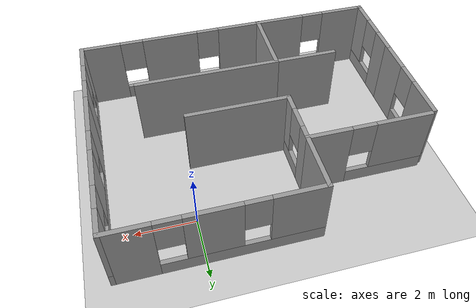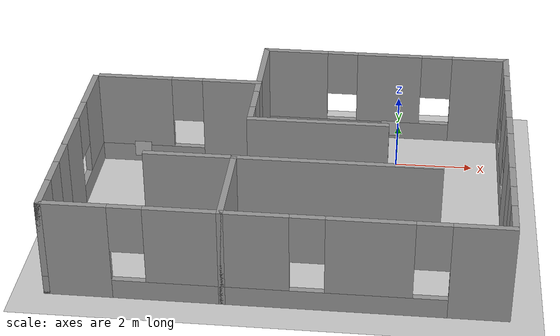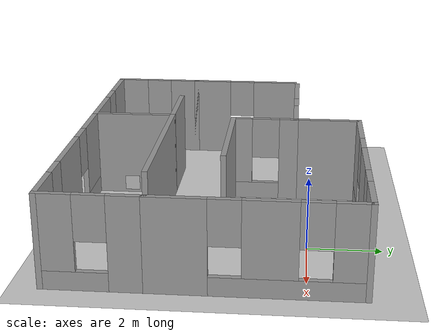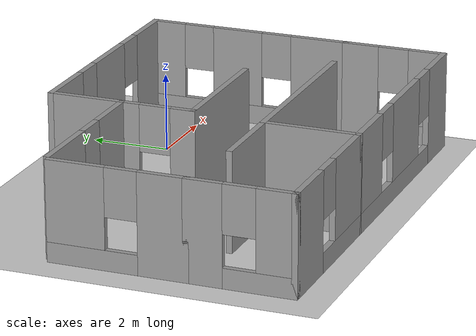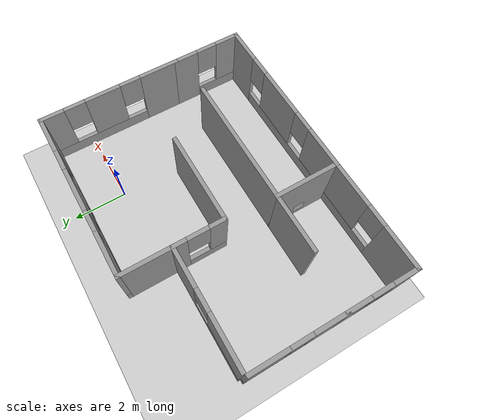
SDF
<sdf version="1.7">
 <world name="default">
  <light name="sun" type="directional">
   <pose>0 0 10 0 -0 0</pose>
   <diffuse>0.8 0.8 0.8 1</diffuse>
   <specular>0.2 0.2 0.2 1</specular>
   <attenuation>
    <range>1000</range>
    <constant>0.9</constant>
    <linear>0.01</linear>
    <quadratic>0.001</quadratic>
   </attenuation>
   <direction>-0.5 0.1 -0.9</direction>
   <spot><inner_angle>0</inner_angle><outer_angle>0</outer_angle><falloff>0</falloff></spot>
  </light>
  <model name="ground_plane">
   <static>1</static>
   <link name="link">
    <collision name="collision">
     <geometry><plane><normal>0 0 1</normal><size>100 100</size></plane></geometry>
     <surface>
      <contact><collide_bitmask>65535</collide_bitmask></contact>
      <friction><ode><mu>100</mu><mu2>50</mu2></ode></friction>
     </surface>
    </collision>
    <visual name="visual">
     <cast_shadows>0</cast_shadows>
     <geometry><plane><normal>0 0 1</normal><size>100 100</size></plane></geometry>
     <material>
      <script><uri>file://media/materials/scripts/gazebo.material</uri><name>Gazebo/Grey</name></script>
     </material>
    </visual>
   </link>
  </model>
  <gravity>0 0 -9.8</gravity>
  <magnetic_field>6e-06 2.3e-05 -4.2e-05</magnetic_field>
  <atmosphere type="adiabatic"/>
  <physics type="ode">
   <max_step_size>0.001</max_step_size>
   <real_time_factor>1</real_time_factor>
   <real_time_update_rate>1000</real_time_update_rate>
  </physics>
  <scene><ambient>0.4 0.4 0.4 1</ambient><background>0.7 0.7 0.7 1</background><shadows>1</shadows></scene>
  <spherical_coordinates>
   <surface_model>EARTH_WGS84</surface_model>
   <latitude_deg>0</latitude_deg>
   <longitude_deg>0</longitude_deg>
   <elevation>0</elevation>
   <heading_deg>0</heading_deg>
  </spherical_coordinates>
  <model name="casa2">
   <pose>-2.55422 -2.49197 0 0 -0 0</pose>
   <link name="Wall_1">
    <pose>5.3 1.29999 0 0 -0 1.5708</pose>
    <visual name="Wall_1_Visual_0">
     <pose>-1.94404 0 1.25 0 -0 0</pose>
     <geometry><box><size>1.55947 0.15 2.5</size></box></geometry>
     <material>
      <script><uri>file://media/materials/scripts/gazebo.material</uri><name>Gazebo/Grey</name></script>
      <ambient>1 1 1 1</ambient>
     </material>
     <meta><layer>0</layer></meta>
    </visual>
    <collision name="Wall_1_Collision_0">
     <geometry><box><size>1.55947 0.15 2.5</size></box></geometry>
     <pose>-1.94404 0 1.25 0 -0 0</pose>
    </collision>
    <visual name="Wall_1_Visual_1">
     <pose>0.779738 0 0.25 0 -0 0</pose>
     <geometry><box><size>3.88808 0.15 0.5</size></box></geometry>
     <material>
      <script><uri>file://media/materials/scripts/gazebo.material</uri><name>Gazebo/Grey</name></script>
      <ambient>1 1 1 1</ambient>
     </material>
     <meta><layer>0</layer></meta>
    </visual>
    <collision name="Wall_1_Collision_1">
     <geometry><box><size>3.88808 0.15 0.5</size></box></geometry>
     <pose>0.779738 0 0.25 0 -0 0</pose>
    </collision>
    <visual name="Wall_1_Visual_2">
     <pose>0.311335 0 1.5 0 -0 0</pose>
     <geometry><box><size>1.35128 0.15 2</size></box></geometry>
     <material>
      <script><uri>file://media/materials/scripts/gazebo.material</uri><name>Gazebo/Grey</name></script>
      <ambient>1 1 1 1</ambient>
     </material>
     <meta><layer>0</layer></meta>
    </visual>
    <collision name="Wall_1_Collision_2">
     <geometry><box><size>1.35128 0.15 2</size></box></geometry>
     <pose>0.311335 0 1.5 0 -0 0</pose>
    </collision>
    <visual name="Wall_1_Visual_3">
     <pose>2.25538 0 1.5 0 -0 0</pose>
     <geometry><box><size>0.936806 0.15 2</size></box></geometry>
     <material>
      <script><uri>file://media/materials/scripts/gazebo.material</uri><name>Gazebo/Grey</name></script>
      <ambient>1 1 1 1</ambient>
     </material>
     <meta><layer>0</layer></meta>
    </visual>
    <collision name="Wall_1_Collision_3">
     <geometry><box><size>0.936806 0.15 2</size></box></geometry>
     <pose>2.25538 0 1.5 0 -0 0</pose>
    </collision>
    <visual name="Wall_1_Visual_4">
     <pose>-0.764304 0 1.9 0 -0 0</pose>
     <geometry><box><size>0.8 0.15 1.2</size></box></geometry>
     <material>
      <script><uri>file://media/materials/scripts/gazebo.material</uri><name>Gazebo/Grey</name></script>
      <ambient>1 1 1 1</ambient>
     </material>
     <meta><layer>0</layer></meta>
    </visual>
    <collision name="Wall_1_Collision_4">
     <geometry><box><size>0.8 0.15 1.2</size></box></geometry>
     <pose>-0.764304 0 1.9 0 -0 0</pose>
    </collision>
    <visual name="Wall_1_Visual_5">
     <pose>1.38697 0 1.9 0 -0 0</pose>
     <geometry><box><size>0.8 0.15 1.2</size></box></geometry>
     <material>
      <script><uri>file://media/materials/scripts/gazebo.material</uri><name>Gazebo/Grey</name></script>
      <ambient>1 1 1 1</ambient>
     </material>
     <meta><layer>0</layer></meta>
    </visual>
    <collision name="Wall_1_Collision_5">
     <geometry><box><size>0.8 0.15 1.2</size></box></geometry>
     <pose>1.38697 0 1.9 0 -0 0</pose>
    </collision>
   </link>
   <link name="Wall_12">
    <pose>-5.3 -2.64877 0 0 -0 -1.5708</pose>
    <visual name="Wall_12_Visual_0">
     <pose>-0.89688 0 1.25 0 -0 0</pose>
     <geometry><box><size>0.95624 0.15 2.5</size></box></geometry>
     <material>
      <script><uri>file://media/materials/scripts/gazebo.material</uri><name>Gazebo/Grey</name></script>
      <ambient>1 1 1 1</ambient>
     </material>
     <meta><layer>0</layer></meta>
    </visual>
    <collision name="Wall_12_Collision_0">
     <geometry><box><size>0.95624 0.15 2.5</size></box></geometry>
     <pose>-0.89688 0 1.25 0 -0 0</pose>
    </collision>
    <visual name="Wall_12_Visual_1">
     <pose>0.47812 0 0.25 0 -0 0</pose>
     <geometry><box><size>1.79376 0.15 0.5</size></box></geometry>
     <material>
      <script><uri>file://media/materials/scripts/gazebo.material</uri><name>Gazebo/Grey</name></script>
      <ambient>1 1 1 1</ambient>
     </material>
     <meta><layer>0</layer></meta>
    </visual>
    <collision name="Wall_12_Collision_1">
     <geometry><box><size>1.79376 0.15 0.5</size></box></geometry>
     <pose>0.47812 0 0.25 0 -0 0</pose>
    </collision>
    <visual name="Wall_12_Visual_2">
     <pose>0.87812 0 1.5 0 -0 0</pose>
     <geometry><box><size>0.99376 0.15 2</size></box></geometry>
     <material>
      <script><uri>file://media/materials/scripts/gazebo.material</uri><name>Gazebo/Grey</name></script>
      <ambient>1 1 1 1</ambient>
     </material>
     <meta><layer>0</layer></meta>
    </visual>
    <collision name="Wall_12_Collision_2">
     <geometry><box><size>0.99376 0.15 2</size></box></geometry>
     <pose>0.87812 0 1.5 0 -0 0</pose>
    </collision>
    <visual name="Wall_12_Visual_3">
     <pose>-0.01876 0 1.9 0 -0 0</pose>
     <geometry><box><size>0.8 0.15 1.2</size></box></geometry>
     <material>
      <script><uri>file://media/materials/scripts/gazebo.material</uri><name>Gazebo/Grey</name></script>
      <ambient>1 1 1 1</ambient>
     </material>
     <meta><layer>0</layer></meta>
    </visual>
    <collision name="Wall_12_Collision_3">
     <geometry><box><size>0.8 0.15 1.2</size></box></geometry>
     <pose>-0.01876 0 1.9 0 -0 0</pose>
    </collision>
   </link>
   <link name="Wall_13">
    <pose>-3.25 -3.94877 0 0 -0 0</pose>
    <visual name="Wall_13_Visual_0">
     <pose>-1.30974 0 1.25 0 -0 0</pose>
     <geometry><box><size>1.63053 0.15 2.5</size></box></geometry>
     <material>
      <script><uri>file://media/materials/scripts/gazebo.material</uri><name>Gazebo/Grey</name></script>
      <ambient>1 1 1 1</ambient>
     </material>
     <meta><layer>0</layer></meta>
    </visual>
    <collision name="Wall_13_Collision_0">
     <geometry><box><size>1.63053 0.15 2.5</size></box></geometry>
     <pose>-1.30974 0 1.25 0 -0 0</pose>
    </collision>
    <visual name="Wall_13_Visual_1">
     <pose>0.815263 0 0.25 0 -0 0</pose>
     <geometry><box><size>2.61947 0.15 0.5</size></box></geometry>
     <material>
      <script><uri>file://media/materials/scripts/gazebo.material</uri><name>Gazebo/Grey</name></script>
      <ambient>1 1 1 1</ambient>
     </material>
     <meta><layer>0</layer></meta>
    </visual>
    <collision name="Wall_13_Collision_1">
     <geometry><box><size>2.61947 0.15 0.5</size></box></geometry>
     <pose>0.815263 0 0.25 0 -0 0</pose>
    </collision>
    <visual name="Wall_13_Visual_2">
     <pose>1.21526 0 1.5 0 -0 0</pose>
     <geometry><box><size>1.81947 0.15 2</size></box></geometry>
     <material>
      <script><uri>file://media/materials/scripts/gazebo.material</uri><name>Gazebo/Grey</name></script>
      <ambient>1 1 1 1</ambient>
     </material>
     <meta><layer>0</layer></meta>
    </visual>
    <collision name="Wall_13_Collision_2">
     <geometry><box><size>1.81947 0.15 2</size></box></geometry>
     <pose>1.21526 0 1.5 0 -0 0</pose>
    </collision>
    <visual name="Wall_13_Visual_3">
     <pose>-0.094475 0 1.9 0 -0 0</pose>
     <geometry><box><size>0.8 0.15 1.2</size></box></geometry>
     <material>
      <script><uri>file://media/materials/scripts/gazebo.material</uri><name>Gazebo/Grey</name></script>
      <ambient>1 1 1 1</ambient>
     </material>
     <meta><layer>0</layer></meta>
    </visual>
    <collision name="Wall_13_Collision_3">
     <geometry><box><size>0.8 0.15 1.2</size></box></geometry>
     <pose>-0.094475 0 1.9 0 -0 0</pose>
    </collision>
   </link>
   <link name="Wall_15">
    <collision name="Wall_15_Collision">
     <geometry><box><size>2.5 0.15 2.5</size></box></geometry>
     <pose>0 0 1.25 0 -0 0</pose>
    </collision>
    <visual name="Wall_15_Visual">
     <pose>0 0 1.25 0 -0 0</pose>
     <geometry><box><size>2.5 0.15 2.5</size></box></geometry>
     <material>
      <script><uri>file://media/materials/scripts/gazebo.material</uri><name>Gazebo/Grey</name></script>
      <ambient>1 1 1 1</ambient>
     </material>
     <meta><layer>0</layer></meta>
    </visual>
    <pose>-1.2 -2.77377 0 0 -0 1.5708</pose>
   </link>
   <link name="Wall_17">
    <pose>5.3 -2.64877 0 0 -0 -1.5708</pose>
    <visual name="Wall_17_Visual_0">
     <pose>-0.888135 0 1.25 0 -0 0</pose>
     <geometry><box><size>0.973731 0.15 2.5</size></box></geometry>
     <material>
      <script><uri>file://media/materials/scripts/gazebo.material</uri><name>Gazebo/Grey</name></script>
      <ambient>1 1 1 1</ambient>
     </material>
     <meta><layer>0</layer></meta>
    </visual>
    <collision name="Wall_17_Collision_0">
     <geometry><box><size>0.973731 0.15 2.5</size></box></geometry>
     <pose>-0.888135 0 1.25 0 -0 0</pose>
    </collision>
    <visual name="Wall_17_Visual_1">
     <pose>0.486865 0 0.25 0 -0 0</pose>
     <geometry><box><size>1.77627 0.15 0.5</size></box></geometry>
     <material>
      <script><uri>file://media/materials/scripts/gazebo.material</uri><name>Gazebo/Grey</name></script>
      <ambient>1 1 1 1</ambient>
     </material>
     <meta><layer>0</layer></meta>
    </visual>
    <collision name="Wall_17_Collision_1">
     <geometry><box><size>1.77627 0.15 0.5</size></box></geometry>
     <pose>0.486865 0 0.25 0 -0 0</pose>
    </collision>
    <visual name="Wall_17_Visual_2">
     <pose>0.886865 0 1.5 0 -0 0</pose>
     <geometry><box><size>0.976269 0.15 2</size></box></geometry>
     <material>
      <script><uri>file://media/materials/scripts/gazebo.material</uri><name>Gazebo/Grey</name></script>
      <ambient>1 1 1 1</ambient>
     </material>
     <meta><layer>0</layer></meta>
    </visual>
    <collision name="Wall_17_Collision_2">
     <geometry><box><size>0.976269 0.15 2</size></box></geometry>
     <pose>0.886865 0 1.5 0 -0 0</pose>
    </collision>
    <visual name="Wall_17_Visual_3">
     <pose>-0.001269 0 1.9 0 -0 0</pose>
     <geometry><box><size>0.8 0.15 1.2</size></box></geometry>
     <material>
      <script><uri>file://media/materials/scripts/gazebo.material</uri><name>Gazebo/Grey</name></script>
      <ambient>1 1 1 1</ambient>
     </material>
     <meta><layer>0</layer></meta>
    </visual>
    <collision name="Wall_17_Collision_3">
     <geometry><box><size>0.8 0.15 1.2</size></box></geometry>
     <pose>-0.001269 0 1.9 0 -0 0</pose>
    </collision>
   </link>
   <link name="Wall_18">
    <pose>2.05 -3.94877 0 0 -0 3.14159</pose>
    <visual name="Wall_18_Visual_0">
     <pose>-2.61081 0 1.25 0 -0 0</pose>
     <geometry><box><size>1.42839 0.15 2.5</size></box></geometry>
     <material>
      <script><uri>file://media/materials/scripts/gazebo.material</uri><name>Gazebo/Grey</name></script>
      <ambient>1 1 1 1</ambient>
     </material>
     <meta><layer>0</layer></meta>
    </visual>
    <collision name="Wall_18_Collision_0">
     <geometry><box><size>1.42839 0.15 2.5</size></box></geometry>
     <pose>-2.61081 0 1.25 0 -0 0</pose>
    </collision>
    <visual name="Wall_18_Visual_1">
     <pose>0.714195 0 0.25 0 -0 0</pose>
     <geometry><box><size>5.22161 0.15 0.5</size></box></geometry>
     <material>
      <script><uri>file://media/materials/scripts/gazebo.material</uri><name>Gazebo/Grey</name></script>
      <ambient>1 1 1 1</ambient>
     </material>
     <meta><layer>0</layer></meta>
    </visual>
    <collision name="Wall_18_Collision_1">
     <geometry><box><size>5.22161 0.15 0.5</size></box></geometry>
     <pose>0.714195 0 0.25 0 -0 0</pose>
    </collision>
    <visual name="Wall_18_Visual_2">
     <pose>-0.097405 0 1.5 0 -0 0</pose>
     <geometry><box><size>1.99841 0.15 2</size></box></geometry>
     <material>
      <script><uri>file://media/materials/scripts/gazebo.material</uri><name>Gazebo/Grey</name></script>
      <ambient>1 1 1 1</ambient>
     </material>
     <meta><layer>0</layer></meta>
    </visual>
    <collision name="Wall_18_Collision_2">
     <geometry><box><size>1.99841 0.15 2</size></box></geometry>
     <pose>-0.097405 0 1.5 0 -0 0</pose>
    </collision>
    <visual name="Wall_18_Visual_3">
     <pose>2.5134 0 1.5 0 -0 0</pose>
     <geometry><box><size>1.6232 0.15 2</size></box></geometry>
     <material>
      <script><uri>file://media/materials/scripts/gazebo.material</uri><name>Gazebo/Grey</name></script>
      <ambient>1 1 1 1</ambient>
     </material>
     <meta><layer>0</layer></meta>
    </visual>
    <collision name="Wall_18_Collision_3">
     <geometry><box><size>1.6232 0.15 2</size></box></geometry>
     <pose>2.5134 0 1.5 0 -0 0</pose>
    </collision>
    <visual name="Wall_18_Visual_4">
     <pose>-1.49661 0 1.9 0 -0 0</pose>
     <geometry><box><size>0.8 0.15 1.2</size></box></geometry>
     <material>
      <script><uri>file://media/materials/scripts/gazebo.material</uri><name>Gazebo/Grey</name></script>
      <ambient>1 1 1 1</ambient>
     </material>
     <meta><layer>0</layer></meta>
    </visual>
    <collision name="Wall_18_Collision_4">
     <geometry><box><size>0.8 0.15 1.2</size></box></geometry>
     <pose>-1.49661 0 1.9 0 -0 0</pose>
    </collision>
    <visual name="Wall_18_Visual_5">
     <pose>1.3018 0 1.9 0 -0 0</pose>
     <geometry><box><size>0.8 0.15 1.2</size></box></geometry>
     <material>
      <script><uri>file://media/materials/scripts/gazebo.material</uri><name>Gazebo/Grey</name></script>
      <ambient>1 1 1 1</ambient>
     </material>
     <meta><layer>0</layer></meta>
    </visual>
    <collision name="Wall_18_Collision_5">
     <geometry><box><size>0.8 0.15 1.2</size></box></geometry>
     <pose>1.3018 0 1.9 0 -0 0</pose>
    </collision>
   </link>
   <link name="Wall_2">
    <pose>2.125 3.94876 0 0 -0 3.14159</pose>
    <visual name="Wall_2_Visual_0">
     <pose>-2.50957 0 1.25 0 -0 0</pose>
     <geometry><box><size>1.48086 0.15 2.5</size></box></geometry>
     <material>
      <script><uri>file://media/materials/scripts/gazebo.material</uri><name>Gazebo/Grey</name></script>
      <ambient>1 1 1 1</ambient>
     </material>
     <meta><layer>0</layer></meta>
    </visual>
    <collision name="Wall_2_Collision_0">
     <geometry><box><size>1.48086 0.15 2.5</size></box></geometry>
     <pose>-2.50957 0 1.25 0 -0 0</pose>
    </collision>
    <visual name="Wall_2_Visual_1">
     <pose>0.74043 0 0.25 0 -0 0</pose>
     <geometry><box><size>5.01914 0.15 0.5</size></box></geometry>
     <material>
      <script><uri>file://media/materials/scripts/gazebo.material</uri><name>Gazebo/Grey</name></script>
      <ambient>1 1 1 1</ambient>
     </material>
     <meta><layer>0</layer></meta>
    </visual>
    <collision name="Wall_2_Collision_1">
     <geometry><box><size>5.01914 0.15 0.5</size></box></geometry>
     <pose>0.74043 0 0.25 0 -0 0</pose>
    </collision>
    <visual name="Wall_2_Visual_2">
     <pose>-0.1186 0 1.5 0 -0 0</pose>
     <geometry><box><size>1.70108 0.15 2</size></box></geometry>
     <material>
      <script><uri>file://media/materials/scripts/gazebo.material</uri><name>Gazebo/Grey</name></script>
      <ambient>1 1 1 1</ambient>
     </material>
     <meta><layer>0</layer></meta>
    </visual>
    <collision name="Wall_2_Collision_2">
     <geometry><box><size>1.70108 0.15 2</size></box></geometry>
     <pose>-0.1186 0 1.5 0 -0 0</pose>
    </collision>
    <visual name="Wall_2_Visual_3">
     <pose>2.39097 0 1.5 0 -0 0</pose>
     <geometry><box><size>1.71806 0.15 2</size></box></geometry>
     <material>
      <script><uri>file://media/materials/scripts/gazebo.material</uri><name>Gazebo/Grey</name></script>
      <ambient>1 1 1 1</ambient>
     </material>
     <meta><layer>0</layer></meta>
    </visual>
    <collision name="Wall_2_Collision_3">
     <geometry><box><size>1.71806 0.15 2</size></box></geometry>
     <pose>2.39097 0 1.5 0 -0 0</pose>
    </collision>
    <visual name="Wall_2_Visual_4">
     <pose>-1.36914 0 1.9 0 -0 0</pose>
     <geometry><box><size>0.8 0.15 1.2</size></box></geometry>
     <material>
      <script><uri>file://media/materials/scripts/gazebo.material</uri><name>Gazebo/Grey</name></script>
      <ambient>1 1 1 1</ambient>
     </material>
     <meta><layer>0</layer></meta>
    </visual>
    <collision name="Wall_2_Collision_4">
     <geometry><box><size>0.8 0.15 1.2</size></box></geometry>
     <pose>-1.36914 0 1.9 0 -0 0</pose>
    </collision>
    <visual name="Wall_2_Visual_5">
     <pose>1.13194 0 1.9 0 -0 0</pose>
     <geometry><box><size>0.8 0.15 1.2</size></box></geometry>
     <material>
      <script><uri>file://media/materials/scripts/gazebo.material</uri><name>Gazebo/Grey</name></script>
      <ambient>1 1 1 1</ambient>
     </material>
     <meta><layer>0</layer></meta>
    </visual>
    <collision name="Wall_2_Collision_5">
     <geometry><box><size>0.8 0.15 1.2</size></box></geometry>
     <pose>1.13194 0 1.9 0 -0 0</pose>
    </collision>
   </link>
   <link name="Wall_20">
    <collision name="Wall_20_Collision">
     <geometry><box><size>5 0.15 2.5</size></box></geometry>
     <pose>0 0 1.25 0 -0 0</pose>
    </collision>
    <visual name="Wall_20_Visual">
     <pose>0 0 1.25 0 -0 0</pose>
     <geometry><box><size>5 0.15 2.5</size></box></geometry>
     <material>
      <script><uri>file://media/materials/scripts/gazebo.material</uri><name>Gazebo/Grey</name></script>
      <ambient>1 1 1 1</ambient>
     </material>
     <meta><layer>0</layer></meta>
    </visual>
    <pose>1.225 -1.59877 0 0 -0 0</pose>
   </link>
   <link name="Wall_22">
    <collision name="Wall_22_Collision">
     <geometry><box><size>2.25 0.15 2.5</size></box></geometry>
     <pose>0 0 1.25 0 -0 0</pose>
    </collision>
    <visual name="Wall_22_Visual">
     <pose>0 0 1.25 0 -0 0</pose>
     <geometry><box><size>2.25 0.15 2.5</size></box></geometry>
     <material>
      <script><uri>file://media/materials/scripts/gazebo.material</uri><name>Gazebo/Grey</name></script>
      <ambient>1 1 1 1</ambient>
     </material>
     <meta><layer>0</layer></meta>
    </visual>
    <pose>-2.25 -1.59877 0 0 -0 3.14159</pose>
   </link>
   <link name="Wall_24">
    <collision name="Wall_24_Collision">
     <geometry><box><size>3.5 0.15 2.5</size></box></geometry>
     <pose>0 0 1.25 0 -0 0</pose>
    </collision>
    <visual name="Wall_24_Visual">
     <pose>0 0 1.25 0 -0 0</pose>
     <geometry><box><size>3.5 0.15 2.5</size></box></geometry>
     <material>
      <script><uri>file://media/materials/scripts/gazebo.material</uri><name>Gazebo/Grey</name></script>
      <ambient>1 1 1 1</ambient>
     </material>
     <meta><layer>0</layer></meta>
    </visual>
    <pose>0.625 0.248758 0 0 -0 0</pose>
   </link>
   <link name="Wall_3">
    <collision name="Wall_3_Collision">
     <geometry><box><size>2 0.15 2.5</size></box></geometry>
     <pose>0 0 1.25 0 -0 0</pose>
    </collision>
    <visual name="Wall_3_Visual">
     <pose>0 0 1.25 0 -0 0</pose>
     <geometry><box><size>2 0.15 2.5</size></box></geometry>
     <material>
      <script><uri>file://media/materials/scripts/gazebo.material</uri><name>Gazebo/Grey</name></script>
      <ambient>1 1 1 1</ambient>
     </material>
     <meta><layer>0</layer></meta>
    </visual>
    <pose>-1.05 3.02376 0 0 -0 -1.5708</pose>
   </link>
   <link name="Wall_4">
    <pose>-3.1 2.09876 0 0 -0 3.14159</pose>
    <visual name="Wall_4_Visual_0">
     <pose>-1.35889 0 1.25 0 -0 0</pose>
     <geometry><box><size>1.53222 0.15 2.5</size></box></geometry>
     <material>
      <script><uri>file://media/materials/scripts/gazebo.material</uri><name>Gazebo/Grey</name></script>
      <ambient>1 1 1 1</ambient>
     </material>
     <meta><layer>0</layer></meta>
    </visual>
    <collision name="Wall_4_Collision_0">
     <geometry><box><size>1.53222 0.15 2.5</size></box></geometry>
     <pose>-1.35889 0 1.25 0 -0 0</pose>
    </collision>
    <visual name="Wall_4_Visual_1">
     <pose>0.766112 0 0.25 0 -0 0</pose>
     <geometry><box><size>2.71778 0.15 0.5</size></box></geometry>
     <material>
      <script><uri>file://media/materials/scripts/gazebo.material</uri><name>Gazebo/Grey</name></script>
      <ambient>1 1 1 1</ambient>
     </material>
     <meta><layer>0</layer></meta>
    </visual>
    <collision name="Wall_4_Collision_1">
     <geometry><box><size>2.71778 0.15 0.5</size></box></geometry>
     <pose>0.766112 0 0.25 0 -0 0</pose>
    </collision>
    <visual name="Wall_4_Visual_2">
     <pose>1.16611 0 1.5 0 -0 0</pose>
     <geometry><box><size>1.91778 0.15 2</size></box></geometry>
     <material>
      <script><uri>file://media/materials/scripts/gazebo.material</uri><name>Gazebo/Grey</name></script>
      <ambient>1 1 1 1</ambient>
     </material>
     <meta><layer>0</layer></meta>
    </visual>
    <collision name="Wall_4_Collision_2">
     <geometry><box><size>1.91778 0.15 2</size></box></geometry>
     <pose>1.16611 0 1.5 0 -0 0</pose>
    </collision>
    <visual name="Wall_4_Visual_3">
     <pose>-0.192777 0 1.9 0 -0 0</pose>
     <geometry><box><size>0.8 0.15 1.2</size></box></geometry>
     <material>
      <script><uri>file://media/materials/scripts/gazebo.material</uri><name>Gazebo/Grey</name></script>
      <ambient>1 1 1 1</ambient>
     </material>
     <meta><layer>0</layer></meta>
    </visual>
    <collision name="Wall_4_Collision_3">
     <geometry><box><size>0.8 0.15 1.2</size></box></geometry>
     <pose>-0.192777 0 1.9 0 -0 0</pose>
    </collision>
   </link>
   <link name="Wall_7">
    <pose>-5.3 0.326228 0 0 -0 1.5708</pose>
    <visual name="Wall_7_Visual_0">
     <pose>-1.12768 0 1.25 0 -0 0</pose>
     <geometry><box><size>1.24464 0.15 2.5</size></box></geometry>
     <material>
      <script><uri>file://media/materials/scripts/gazebo.material</uri><name>Gazebo/Grey</name></script>
      <ambient>1 1 1 1</ambient>
     </material>
     <meta><layer>0</layer></meta>
    </visual>
    <collision name="Wall_7_Collision_0">
     <geometry><box><size>1.24464 0.15 2.5</size></box></geometry>
     <pose>-1.12768 0 1.25 0 -0 0</pose>
    </collision>
    <visual name="Wall_7_Visual_1">
     <pose>0.62232 0 0.25 0 -0 0</pose>
     <geometry><box><size>2.25536 0.15 0.5</size></box></geometry>
     <material>
      <script><uri>file://media/materials/scripts/gazebo.material</uri><name>Gazebo/Grey</name></script>
      <ambient>1 1 1 1</ambient>
     </material>
     <meta><layer>0</layer></meta>
    </visual>
    <collision name="Wall_7_Collision_1">
     <geometry><box><size>2.25536 0.15 0.5</size></box></geometry>
     <pose>0.62232 0 0.25 0 -0 0</pose>
    </collision>
    <visual name="Wall_7_Visual_2">
     <pose>1.02232 0 1.5 0 -0 0</pose>
     <geometry><box><size>1.45536 0.15 2</size></box></geometry>
     <material>
      <script><uri>file://media/materials/scripts/gazebo.material</uri><name>Gazebo/Grey</name></script>
      <ambient>1 1 1 1</ambient>
     </material>
     <meta><layer>0</layer></meta>
    </visual>
    <collision name="Wall_7_Collision_2">
     <geometry><box><size>1.45536 0.15 2</size></box></geometry>
     <pose>1.02232 0 1.5 0 -0 0</pose>
    </collision>
    <visual name="Wall_7_Visual_3">
     <pose>-0.10536 0 1.9 0 -0 0</pose>
     <geometry><box><size>0.8 0.15 1.2</size></box></geometry>
     <material>
      <script><uri>file://media/materials/scripts/gazebo.material</uri><name>Gazebo/Grey</name></script>
      <ambient>1 1 1 1</ambient>
     </material>
     <meta><layer>0</layer></meta>
    </visual>
    <collision name="Wall_7_Collision_3">
     <geometry><box><size>0.8 0.15 1.2</size></box></geometry>
     <pose>-0.10536 0 1.9 0 -0 0</pose>
    </collision>
   </link>
   <link name="Wall_9">
    <pose>-1.05 1.17376 0 0 -0 -1.5708</pose>
    <visual name="Wall_9_Visual_0">
     <pose>-0.722022 0 1.25 0 -0 0</pose>
     <geometry><box><size>0.555956 0.15 2.5</size></box></geometry>
     <material>
      <script><uri>file://media/materials/scripts/gazebo.material</uri><name>Gazebo/Grey</name></script>
      <ambient>1 1 1 1</ambient>
     </material>
     <meta><layer>0</layer></meta>
    </visual>
    <collision name="Wall_9_Collision_0">
     <geometry><box><size>0.555956 0.15 2.5</size></box></geometry>
     <pose>-0.722022 0 1.25 0 -0 0</pose>
    </collision>
    <visual name="Wall_9_Visual_1">
     <pose>0.277978 0 0.25 0 -0 0</pose>
     <geometry><box><size>1.44404 0.15 0.5</size></box></geometry>
     <material>
      <script><uri>file://media/materials/scripts/gazebo.material</uri><name>Gazebo/Grey</name></script>
      <ambient>1 1 1 1</ambient>
     </material>
     <meta><layer>0</layer></meta>
    </visual>
    <collision name="Wall_9_Collision_1">
     <geometry><box><size>1.44404 0.15 0.5</size></box></geometry>
     <pose>0.277978 0 0.25 0 -0 0</pose>
    </collision>
    <visual name="Wall_9_Visual_2">
     <pose>0.677978 0 1.5 0 -0 0</pose>
     <geometry><box><size>0.644044 0.15 2</size></box></geometry>
     <material>
      <script><uri>file://media/materials/scripts/gazebo.material</uri><name>Gazebo/Grey</name></script>
      <ambient>1 1 1 1</ambient>
     </material>
     <meta><layer>0</layer></meta>
    </visual>
    <collision name="Wall_9_Collision_2">
     <geometry><box><size>0.644044 0.15 2</size></box></geometry>
     <pose>0.677978 0 1.5 0 -0 0</pose>
    </collision>
    <visual name="Wall_9_Visual_3">
     <pose>-0.044044 0 1.9 0 -0 0</pose>
     <geometry><box><size>0.8 0.15 1.2</size></box></geometry>
     <material>
      <script><uri>file://media/materials/scripts/gazebo.material</uri><name>Gazebo/Grey</name></script>
      <ambient>1 1 1 1</ambient>
     </material>
     <meta><layer>0</layer></meta>
    </visual>
    <collision name="Wall_9_Collision_3">
     <geometry><box><size>0.8 0.15 1.2</size></box></geometry>
     <pose>-0.044044 0 1.9 0 -0 0</pose>
    </collision>
   </link>
   <static>1</static>
  </model>
  <model name="qr_wc">
   <static>1</static>
   <link name="qr_wc_link">
    <pose>0 0 0.001 0 -0 1.5708</pose>
    <visual name="visual_qr_wc">
     <cast_shadows>0</cast_shadows>
     <geometry><box><size>0.44 0.44 0.001</size></box></geometry>
     <material>
      <script>
       <uri>model://qr_wc/materials/scripts</uri>
       <uri>model://qr_wc/materials/textures</uri>
       <name>qr_wc/qr_wc</name>
      </script>
     </material>
    </visual>
   </link>
   <pose>-3.8308 -5.25185 0.432373 -3.14148 -1.56779 3.14149</pose>
  </model>
  <model name="qr_habitacion">
   <static>1</static>
   <link name="qr_habitacion_link">
    <pose>0 0 0.001 0 -0 1.5708</pose>
    <visual name="visual_qr_habitacion">
     <cast_shadows>0</cast_shadows>
     <geometry><box><size>0.44 0.44 0.001</size></box></geometry>
     <material>
      <script>
       <uri>model://qr_habitacion/materials/scripts</uri>
       <uri>model://qr_habitacion/materials/textures</uri>
       <name>qr_habitacion/qr_habitacion</name>
      </script>
     </material>
    </visual>
   </link>
   <pose>-6.70878 -0.482302 0.384573 1.56356 -0 -3e-06</pose>
  </model>
  <model name="qr_salon">
   <static>1</static>
   <link name="qr_salon_link">
    <pose>0 0 0.001 0 -0 1.5708</pose>
    <visual name="visual_qr_salon">
     <cast_shadows>0</cast_shadows>
     <geometry><box><size>0.44 0.44 0.001</size></box></geometry>
     <material>
      <script>
       <uri>model://qr_salon/materials/scripts</uri>
       <uri>model://qr_salon/materials/textures</uri>
       <name>qr_salon/qr_salon</name>
      </script>
     </material>
    </visual>
   </link>
   <pose>-0.253636 1.36386 0.317806 1.57311 -0 9e-06</pose>
  </model>
  <model name="qr_cocina">
   <static>1</static>
   <link name="qr_cocina_link">
    <pose>0 0 0.001 0 -0 1.5708</pose>
    <visual name="visual_qr_cocina">
     <cast_shadows>0</cast_shadows>
     <geometry><box><size>0.44 0.44 0.001</size></box></geometry>
     <material>
      <script>
       <uri>model://qr_cocina/materials/scripts</uri>
       <uri>model://qr_cocina/materials/textures</uri>
       <name>qr_cocina/qr_cocina</name>
      </script>
     </material>
    </visual>
   </link>
   <pose>-3.66991 -5.36438 0.310979 3.14147 1.56817 3.14147</pose>
  </model>
 </world>
</sdf>
